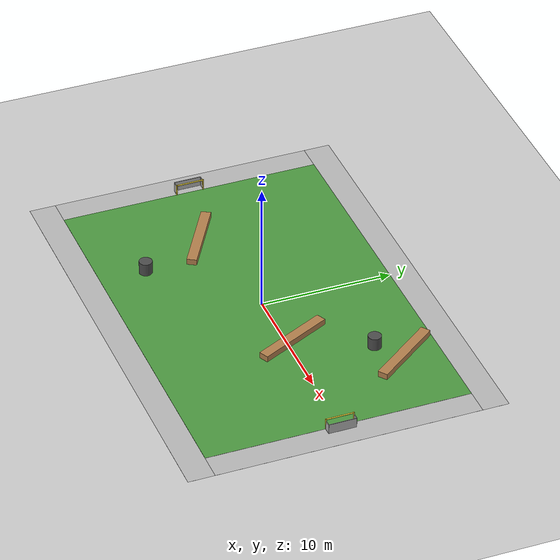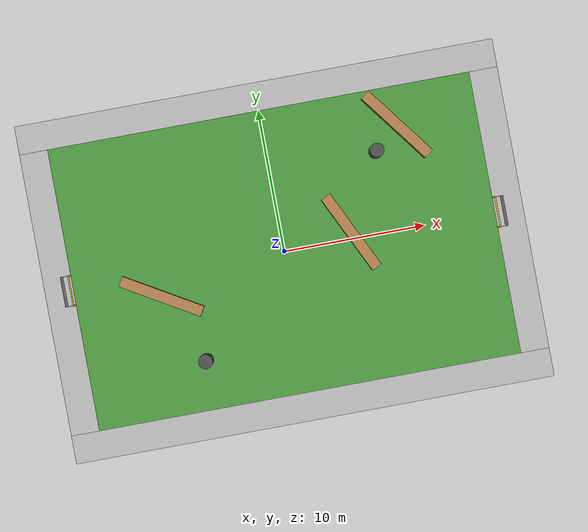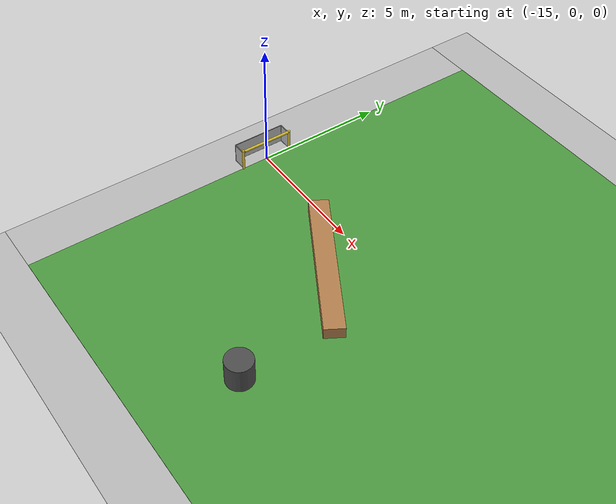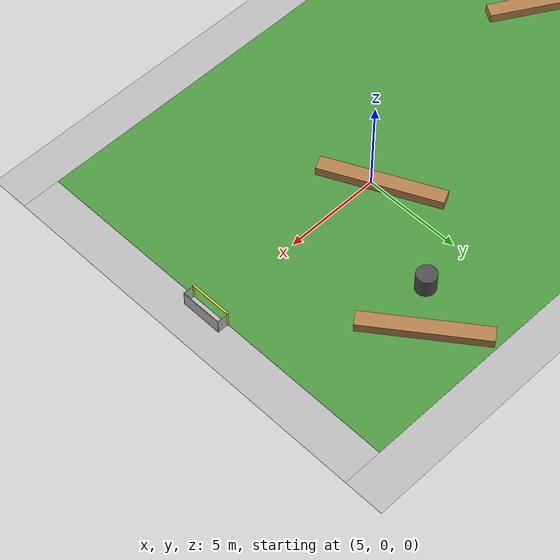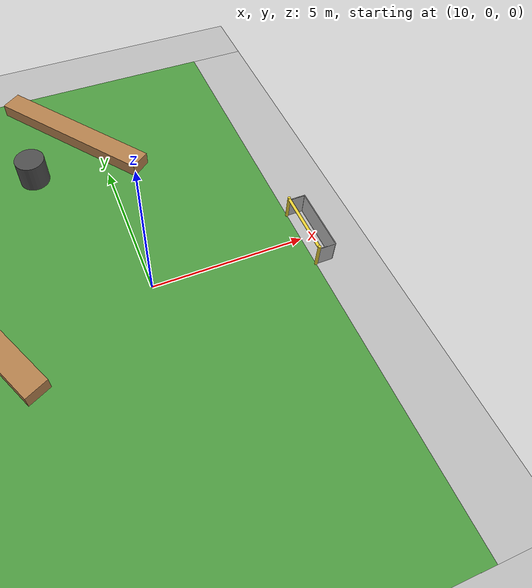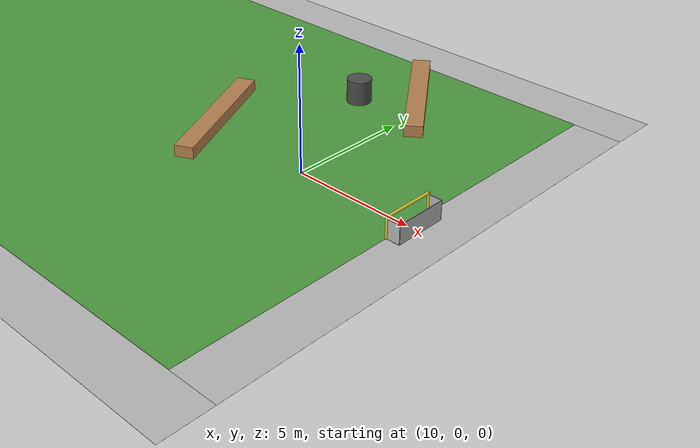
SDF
<sdf version="1.6">
 <world name="default">
  <light name="sun" type="directional">
   <pose>0 0 10 0 -0 0</pose>
   <diffuse>0.8 0.8 0.8 1</diffuse>
   <specular>0.2 0.2 0.2 1</specular>
   <attenuation>
    <range>1000</range>
    <constant>0.9</constant>
    <linear>0.01</linear>
    <quadratic>0.001</quadratic>
   </attenuation>
   <direction>-0.5 0.1 -0.9</direction>
  </light>
  <model name="ground_plane">
   <static>1</static>
   <link name="link">
    <collision name="collision">
     <geometry><plane><normal>0 0 1</normal><size>100 100</size></plane></geometry>
     <surface>
      <contact><collide_bitmask>65535</collide_bitmask></contact>
      <friction><ode><mu>100</mu><mu2>50</mu2></ode></friction>
     </surface>
    </collision>
    <visual name="visual">
     <cast_shadows>0</cast_shadows>
     <geometry><plane><normal>0 0 1</normal><size>100 100</size></plane></geometry>
     <material>
      <script><uri>file://media/materials/scripts/gazebo.material</uri><name>Gazebo/Grey</name></script>
     </material>
    </visual>
   </link>
  </model>
  <gravity>0 0 -9.8</gravity>
  <magnetic_field>6e-06 2.3e-05 -4.2e-05</magnetic_field>
  <atmosphere type="adiabatic"/>
  <physics name="default_physics" default="0" type="ode">
   <max_step_size>0.001</max_step_size>
   <real_time_factor>1</real_time_factor>
   <real_time_update_rate>1000</real_time_update_rate>
  </physics>
  <scene><ambient>0.4 0.4 0.4 1</ambient><background>0.7 0.7 0.7 1</background><shadows>1</shadows></scene>
  <audio><device>default</device></audio>
  <spherical_coordinates>
   <surface_model>EARTH_WGS84</surface_model>
   <latitude_deg>0</latitude_deg>
   <longitude_deg>0</longitude_deg>
   <elevation>0</elevation>
   <heading_deg>0</heading_deg>
  </spherical_coordinates>
  <model name="robocup_3d_field">
   <static>1</static>
   <link name="field">
    <pose>0 0 0.01 0 -0 0</pose>
    <collision name="collision">
     <geometry><plane><normal>0 0 1</normal><size>30 20</size></plane></geometry>
     <surface><friction><ode><mu>100</mu><mu2>50</mu2></ode></friction></surface>
    </collision>
    <visual name="base1">
     <pose>0 11 0.001 0 -0 0</pose>
     <cast_shadows>0</cast_shadows>
     <geometry><plane><normal>0 0 1</normal><size>34 2</size></plane></geometry>
     <material>
      <script>
       <uri>model://robocup_3Dsim_field/materials/scripts/</uri>
       <uri>model://robocup_3Dsim_field/materials/textures/</uri>
       <name>RoboCup/FieldBorder</name>
      </script>
     </material>
    </visual>
    <visual name="base2">
     <pose>0 -11 0.001 0 -0 0</pose>
     <cast_shadows>0</cast_shadows>
     <geometry><plane><normal>0 0 1</normal><size>34 2</size></plane></geometry>
     <material>
      <script>
       <uri>model://robocup_3Dsim_field/materials/scripts/</uri>
       <uri>model://robocup_3Dsim_field/materials/textures/</uri>
       <name>RoboCup/FieldBorder</name>
      </script>
     </material>
    </visual>
    <visual name="base3">
     <pose>16 0 0.001 0 -0 0</pose>
     <cast_shadows>0</cast_shadows>
     <geometry><plane><normal>0 0 1</normal><size>2 20</size></plane></geometry>
     <material>
      <script>
       <uri>model://robocup_3Dsim_field/materials/scripts/</uri>
       <uri>model://robocup_3Dsim_field/materials/textures/</uri>
       <name>RoboCup/FieldBorder</name>
      </script>
     </material>
    </visual>
    <visual name="base4">
     <pose>-16 0 0.001 0 -0 0</pose>
     <cast_shadows>0</cast_shadows>
     <geometry><plane><normal>0 0 1</normal><size>2 20</size></plane></geometry>
     <material>
      <script>
       <uri>model://robocup_3Dsim_field/materials/scripts/</uri>
       <uri>model://robocup_3Dsim_field/materials/textures/</uri>
       <name>RoboCup/FieldBorder</name>
      </script>
     </material>
    </visual>
    <visual name="carpet">
     <cast_shadows>0</cast_shadows>
     <geometry><plane><normal>0 0 1</normal><size>30 20</size></plane></geometry>
     <material>
      <script>
       <uri>model://robocup_3Dsim_field/materials/scripts/</uri>
       <uri>model://robocup_3Dsim_field/materials/textures/</uri>
       <name>RoboCup/Grass</name>
      </script>
     </material>
    </visual>
   </link>
  </model>
  <model name="robocup_3d_goal">
   <static>1</static>
   <link name="left_post">
    <pose>0 1.05 0.45 0 -0 0</pose>
    <collision name="collision">
     <geometry><cylinder><radius>0.05</radius><length>0.9</length></cylinder></geometry>
    </collision>
    <visual name="visual">
     <geometry><cylinder><radius>0.05</radius><length>0.9</length></cylinder></geometry>
     <material>
      <script><uri>file://media/materials/scripts/gazebo.material</uri><name>Gazebo/ZincYellow</name></script>
     </material>
    </visual>
   </link>
   <link name="left_support_horiz_lower">
    <pose>0.3 1.05 0.01 0 -0 0</pose>
    <collision name="collision"><geometry><box><size>0.5 0.02 0.02</size></box></geometry></collision>
    <visual name="visual">
     <geometry><box><size>0.5 0.02 0.02</size></box></geometry>
     <material>
      <script><uri>file://media/materials/scripts/gazebo.material</uri><name>Gazebo/White</name></script>
     </material>
    </visual>
   </link>
   <link name="left_support_horiz_upper">
    <pose>0.3 1.05 0.79 0 -0 0</pose>
    <collision name="collision"><geometry><box><size>0.5 0.02 0.02</size></box></geometry></collision>
    <visual name="visual">
     <geometry><box><size>0.5 0.02 0.02</size></box></geometry>
     <material>
      <script><uri>file://media/materials/scripts/gazebo.material</uri><name>Gazebo/White</name></script>
     </material>
    </visual>
   </link>
   <link name="left_support_vertical">
    <pose>0.56 1.05 0.4 3.14159 1.57079 3.14159</pose>
    <collision name="collision"><geometry><box><size>0.8 0.02 0.02</size></box></geometry></collision>
    <visual name="visual">
     <geometry><box><size>0.8 0.02 0.02</size></box></geometry>
     <material>
      <script><uri>file://media/materials/scripts/gazebo.material</uri><name>Gazebo/White</name></script>
     </material>
    </visual>
   </link>
   <link name="right_support_horiz_lower">
    <pose>0.3 -1.05 0.01 0 -0 0</pose>
    <collision name="collision"><geometry><box><size>0.5 0.02 0.02</size></box></geometry></collision>
    <visual name="visual">
     <geometry><box><size>0.5 0.02 0.02</size></box></geometry>
     <material>
      <script><uri>file://media/materials/scripts/gazebo.material</uri><name>Gazebo/White</name></script>
     </material>
    </visual>
   </link>
   <link name="right_support_horiz_upper">
    <pose>0.3 -1.05 0.79 0 -0 0</pose>
    <collision name="collision"><geometry><box><size>0.5 0.02 0.02</size></box></geometry></collision>
    <visual name="visual">
     <geometry><box><size>0.5 0.02 0.02</size></box></geometry>
     <material>
      <script><uri>file://media/materials/scripts/gazebo.material</uri><name>Gazebo/White</name></script>
     </material>
    </visual>
   </link>
   <link name="right_support_vertical">
    <pose>0.56 -1.05 0.4 3.14159 1.57079 3.14159</pose>
    <collision name="collision"><geometry><box><size>0.8 0.02 0.02</size></box></geometry></collision>
    <visual name="visual">
     <geometry><box><size>0.8 0.02 0.02</size></box></geometry>
     <material>
      <script><uri>file://media/materials/scripts/gazebo.material</uri><name>Gazebo/White</name></script>
     </material>
    </visual>
   </link>
   <link name="center_support_horiz_lower">
    <pose>0.56 0 0.01 3.14159 1.57079 3.14159</pose>
    <collision name="collision"><geometry><box><size>0.02 2.08 0.02</size></box></geometry></collision>
    <visual name="visual">
     <geometry><box><size>0.02 2.08 0.02</size></box></geometry>
     <material>
      <script><uri>file://media/materials/scripts/gazebo.material</uri><name>Gazebo/White</name></script>
     </material>
    </visual>
   </link>
   <link name="center_support_horiz_upper">
    <pose>0.56 0 0.79 3.14159 1.57079 3.14159</pose>
    <collision name="collision"><geometry><box><size>0.02 2.08 0.02</size></box></geometry></collision>
    <visual name="visual">
     <geometry><box><size>0.02 2.08 0.02</size></box></geometry>
     <material>
      <script><uri>file://media/materials/scripts/gazebo.material</uri><name>Gazebo/White</name></script>
     </material>
    </visual>
   </link>
   <link name="right_post">
    <pose>0 -1.05 0.45 0 -0 0</pose>
    <collision name="collision">
     <geometry><cylinder><radius>0.05</radius><length>0.9</length></cylinder></geometry>
    </collision>
    <visual name="visual">
     <geometry><cylinder><radius>0.05</radius><length>0.9</length></cylinder></geometry>
     <material>
      <script><uri>file://media/materials/scripts/gazebo.material</uri><name>Gazebo/ZincYellow</name></script>
     </material>
    </visual>
   </link>
   <link name="crossbar">
    <pose>0 0 0.85 1.57 1.57 0</pose>
    <collision name="collision">
     <geometry><cylinder><radius>0.05</radius><length>2</length></cylinder></geometry>
    </collision>
    <visual name="visual">
     <geometry><cylinder><radius>0.05</radius><length>2</length></cylinder></geometry>
     <material>
      <script><uri>file://media/materials/scripts/gazebo.material</uri><name>Gazebo/ZincYellow</name></script>
     </material>
    </visual>
   </link>
   <link name="center_net">
    <pose>0.56 0 0.4 0 -0 0</pose>
    <collision name="collision"><geometry><box><size>0.01 2.1 0.8</size></box></geometry></collision>
    <visual name="visual">
     <geometry><box><size>0.01 2.1 0.8</size></box></geometry>
     <material>
      <script>
       <uri>model://robocup09_spl_field/materials/scripts/</uri>
       <uri>model://robocup09_spl_field/materials/textures/</uri>
       <name>RoboCup/Net</name>
      </script>
     </material>
    </visual>
   </link>
   <link name="left_net">
    <pose>0.3 1.05 0.4 0 -0 0</pose>
    <collision name="collision"><geometry><box><size>0.5 0.01 0.76</size></box></geometry></collision>
    <visual name="visual">
     <geometry><box><size>0.5 0.01 0.76</size></box></geometry>
     <material>
      <script>
       <uri>model://robocup09_spl_field/materials/scripts/</uri>
       <uri>model://robocup09_spl_field/materials/textures/</uri>
       <name>RoboCup/Net</name>
      </script>
     </material>
    </visual>
   </link>
   <link name="right_net">
    <pose>0.3 -1.05 0.4 0 -0 0</pose>
    <collision name="collision"><geometry><box><size>0.5 0.01 0.76</size></box></geometry></collision>
    <visual name="visual">
     <geometry><box><size>0.5 0.01 0.76</size></box></geometry>
     <material>
      <script>
       <uri>model://robocup09_spl_field/materials/scripts/</uri>
       <uri>model://robocup09_spl_field/materials/textures/</uri>
       <name>RoboCup/Net</name>
      </script>
     </material>
    </visual>
   </link>
   <pose>-15 -0 0 0 -0 3.1415</pose>
  </model>
  <model name="robocup_3d_goal_0">
   <static>1</static>
   <link name="left_post">
    <pose>0 1.05 0.45 0 -0 0</pose>
    <collision name="collision">
     <geometry><cylinder><radius>0.05</radius><length>0.9</length></cylinder></geometry>
    </collision>
    <visual name="visual">
     <geometry><cylinder><radius>0.05</radius><length>0.9</length></cylinder></geometry>
     <material>
      <script><uri>file://media/materials/scripts/gazebo.material</uri><name>Gazebo/ZincYellow</name></script>
     </material>
    </visual>
   </link>
   <link name="left_support_horiz_lower">
    <pose>0.3 1.05 0.01 0 -0 0</pose>
    <collision name="collision"><geometry><box><size>0.5 0.02 0.02</size></box></geometry></collision>
    <visual name="visual">
     <geometry><box><size>0.5 0.02 0.02</size></box></geometry>
     <material>
      <script><uri>file://media/materials/scripts/gazebo.material</uri><name>Gazebo/White</name></script>
     </material>
    </visual>
   </link>
   <link name="left_support_horiz_upper">
    <pose>0.3 1.05 0.79 0 -0 0</pose>
    <collision name="collision"><geometry><box><size>0.5 0.02 0.02</size></box></geometry></collision>
    <visual name="visual">
     <geometry><box><size>0.5 0.02 0.02</size></box></geometry>
     <material>
      <script><uri>file://media/materials/scripts/gazebo.material</uri><name>Gazebo/White</name></script>
     </material>
    </visual>
   </link>
   <link name="left_support_vertical">
    <pose>0.56 1.05 0.4 3.14159 1.57079 3.14159</pose>
    <collision name="collision"><geometry><box><size>0.8 0.02 0.02</size></box></geometry></collision>
    <visual name="visual">
     <geometry><box><size>0.8 0.02 0.02</size></box></geometry>
     <material>
      <script><uri>file://media/materials/scripts/gazebo.material</uri><name>Gazebo/White</name></script>
     </material>
    </visual>
   </link>
   <link name="right_support_horiz_lower">
    <pose>0.3 -1.05 0.01 0 -0 0</pose>
    <collision name="collision"><geometry><box><size>0.5 0.02 0.02</size></box></geometry></collision>
    <visual name="visual">
     <geometry><box><size>0.5 0.02 0.02</size></box></geometry>
     <material>
      <script><uri>file://media/materials/scripts/gazebo.material</uri><name>Gazebo/White</name></script>
     </material>
    </visual>
   </link>
   <link name="right_support_horiz_upper">
    <pose>0.3 -1.05 0.79 0 -0 0</pose>
    <collision name="collision"><geometry><box><size>0.5 0.02 0.02</size></box></geometry></collision>
    <visual name="visual">
     <geometry><box><size>0.5 0.02 0.02</size></box></geometry>
     <material>
      <script><uri>file://media/materials/scripts/gazebo.material</uri><name>Gazebo/White</name></script>
     </material>
    </visual>
   </link>
   <link name="right_support_vertical">
    <pose>0.56 -1.05 0.4 3.14159 1.57079 3.14159</pose>
    <collision name="collision"><geometry><box><size>0.8 0.02 0.02</size></box></geometry></collision>
    <visual name="visual">
     <geometry><box><size>0.8 0.02 0.02</size></box></geometry>
     <material>
      <script><uri>file://media/materials/scripts/gazebo.material</uri><name>Gazebo/White</name></script>
     </material>
    </visual>
   </link>
   <link name="center_support_horiz_lower">
    <pose>0.56 0 0.01 3.14159 1.57079 3.14159</pose>
    <collision name="collision"><geometry><box><size>0.02 2.08 0.02</size></box></geometry></collision>
    <visual name="visual">
     <geometry><box><size>0.02 2.08 0.02</size></box></geometry>
     <material>
      <script><uri>file://media/materials/scripts/gazebo.material</uri><name>Gazebo/White</name></script>
     </material>
    </visual>
   </link>
   <link name="center_support_horiz_upper">
    <pose>0.56 0 0.79 3.14159 1.57079 3.14159</pose>
    <collision name="collision"><geometry><box><size>0.02 2.08 0.02</size></box></geometry></collision>
    <visual name="visual">
     <geometry><box><size>0.02 2.08 0.02</size></box></geometry>
     <material>
      <script><uri>file://media/materials/scripts/gazebo.material</uri><name>Gazebo/White</name></script>
     </material>
    </visual>
   </link>
   <link name="right_post">
    <pose>0 -1.05 0.45 0 -0 0</pose>
    <collision name="collision">
     <geometry><cylinder><radius>0.05</radius><length>0.9</length></cylinder></geometry>
    </collision>
    <visual name="visual">
     <geometry><cylinder><radius>0.05</radius><length>0.9</length></cylinder></geometry>
     <material>
      <script><uri>file://media/materials/scripts/gazebo.material</uri><name>Gazebo/ZincYellow</name></script>
     </material>
    </visual>
   </link>
   <link name="crossbar">
    <pose>0 0 0.85 1.57 1.57 0</pose>
    <collision name="collision">
     <geometry><cylinder><radius>0.05</radius><length>2</length></cylinder></geometry>
    </collision>
    <visual name="visual">
     <geometry><cylinder><radius>0.05</radius><length>2</length></cylinder></geometry>
     <material>
      <script><uri>file://media/materials/scripts/gazebo.material</uri><name>Gazebo/ZincYellow</name></script>
     </material>
    </visual>
   </link>
   <link name="center_net">
    <pose>0.56 0 0.4 0 -0 0</pose>
    <collision name="collision"><geometry><box><size>0.01 2.1 0.8</size></box></geometry></collision>
    <visual name="visual">
     <geometry><box><size>0.01 2.1 0.8</size></box></geometry>
     <material>
      <script>
       <uri>model://robocup09_spl_field/materials/scripts/</uri>
       <uri>model://robocup09_spl_field/materials/textures/</uri>
       <name>RoboCup/Net</name>
      </script>
     </material>
    </visual>
   </link>
   <link name="left_net">
    <pose>0.3 1.05 0.4 0 -0 0</pose>
    <collision name="collision"><geometry><box><size>0.5 0.01 0.76</size></box></geometry></collision>
    <visual name="visual">
     <geometry><box><size>0.5 0.01 0.76</size></box></geometry>
     <material>
      <script>
       <uri>model://robocup09_spl_field/materials/scripts/</uri>
       <uri>model://robocup09_spl_field/materials/textures/</uri>
       <name>RoboCup/Net</name>
      </script>
     </material>
    </visual>
   </link>
   <link name="right_net">
    <pose>0.3 -1.05 0.4 0 -0 0</pose>
    <collision name="collision"><geometry><box><size>0.5 0.01 0.76</size></box></geometry></collision>
    <visual name="visual">
     <geometry><box><size>0.5 0.01 0.76</size></box></geometry>
     <material>
      <script>
       <uri>model://robocup09_spl_field/materials/scripts/</uri>
       <uri>model://robocup09_spl_field/materials/textures/</uri>
       <name>RoboCup/Net</name>
      </script>
     </material>
    </visual>
   </link>
   <pose>15 0 0 0 -0 0</pose>
  </model>
  <model name="unit_box">
   <pose>9.31787 7.24914 0.24721 -2e-06 -0 0.644705</pose>
   <link name="link">
    <inertial>
     <mass>10</mass>
     <inertia><ixx>30.7502</ixx><ixy>0</ixy><ixz>0</ixz><iyy>31.0363</iyy><iyz>0</iyz><izz>0.6613</izz></inertia>
    </inertial>
    <collision name="collision"><geometry><box><size>0.754352 6.05619 0.47443</size></box></geometry></collision>
    <visual name="visual">
     <geometry><box><size>0.754352 6.05619 0.47443</size></box></geometry>
     <material>
      <script><name>Gazebo/Wood</name><uri>file://media/materials/scripts/gazebo.material</uri></script>
     </material>
    </visual>
   </link>
  </model>
  <model name="unit_cylinder">
   <static>1</static>
   <pose>7.55981 5.68715 0.51 0 -0 0</pose>
   <link name="link">
    <inertial>
     <mass>1</mass>
     <inertia><ixx>0.145833</ixx><ixy>0</ixy><ixz>0</ixz><iyy>0.145833</iyy><iyz>0</iyz><izz>0.125</izz></inertia>
    </inertial>
    <collision name="collision">
     <geometry><cylinder><radius>0.5</radius><length>1</length></cylinder></geometry>
    </collision>
    <visual name="visual">
     <geometry><cylinder><radius>0.5</radius><length>1</length></cylinder></geometry>
     <material>
      <script><name>Gazebo/Road</name><uri>file://media/materials/scripts/gazebo.material</uri></script>
     </material>
    </visual>
   </link>
  </model>
  <model name="unit_cylinder_0">
   <static>1</static>
   <pose>-6.70947 -6.50555 0.50999 0 -0 0</pose>
   <link name="link">
    <inertial>
     <mass>1</mass>
     <inertia><ixx>0.145833</ixx><ixy>0</ixy><ixz>0</ixz><iyy>0.145833</iyy><iyz>0</iyz><izz>0.125</izz></inertia>
    </inertial>
    <collision name="collision">
     <geometry><cylinder><radius>0.5</radius><length>1</length></cylinder></geometry>
    </collision>
    <visual name="visual">
     <geometry><cylinder><radius>0.5</radius><length>1</length></cylinder></geometry>
     <material>
      <script><name>Gazebo/Road</name><uri>file://media/materials/scripts/gazebo.material</uri></script>
     </material>
    </visual>
   </link>
  </model>
  <model name="unit_box_clone">
   <pose>-8.9587 -1.53207 0.247203 -4e-06 -0 1.03899</pose>
   <link name="link">
    <inertial>
     <mass>10</mass>
     <inertia><ixx>30.7502</ixx><ixy>0</ixy><ixz>0</ixz><iyy>31.0363</iyy><iyz>0</iyz><izz>0.6613</izz></inertia>
    </inertial>
    <collision name="collision"><geometry><box><size>0.754352 6.05619 0.47443</size></box></geometry></collision>
    <visual name="visual">
     <geometry><box><size>0.754352 6.05619 0.47443</size></box></geometry>
     <material>
      <script><name>Gazebo/WoodPallet</name><uri>file://media/materials/scripts/gazebo.material</uri></script>
     </material>
    </visual>
   </link>
  </model>
  <model name="unit_box_clone_0">
   <pose>4.83149 0.470694 0.247203 4e-06 -0 0.449395</pose>
   <link name="link">
    <inertial>
     <mass>10</mass>
     <inertia><ixx>30.7502</ixx><ixy>0</ixy><ixz>0</ixz><iyy>31.0363</iyy><iyz>0</iyz><izz>0.6613</izz></inertia>
    </inertial>
    <collision name="collision"><geometry><box><size>0.754352 6.05619 0.47443</size></box></geometry></collision>
    <visual name="visual">
     <geometry><box><size>0.754352 6.05619 0.47443</size></box></geometry>
     <material>
      <script><name>Gazebo/WoodPallet</name><uri>file://media/materials/scripts/gazebo.material</uri></script>
     </material>
    </visual>
   </link>
  </model>
 </world>
</sdf>
